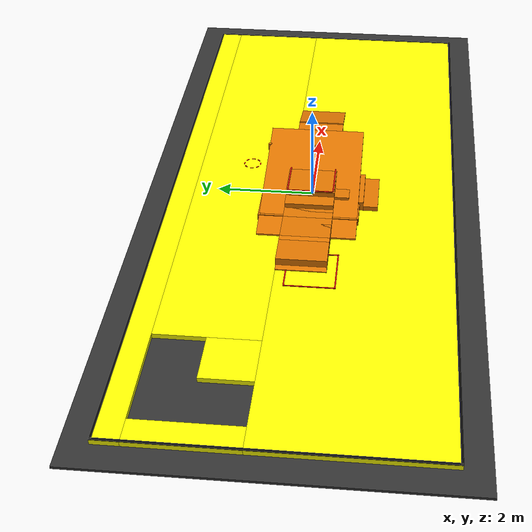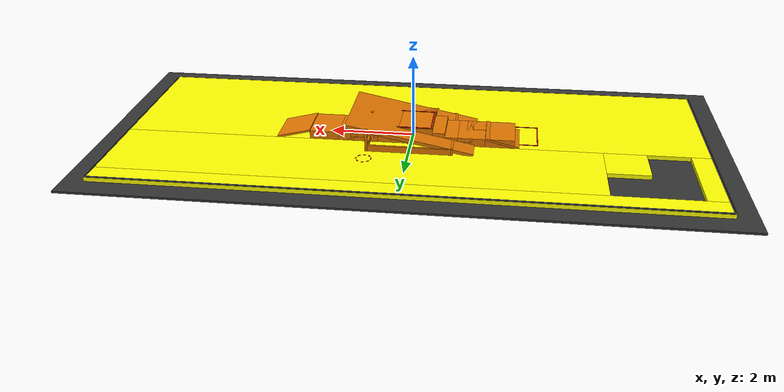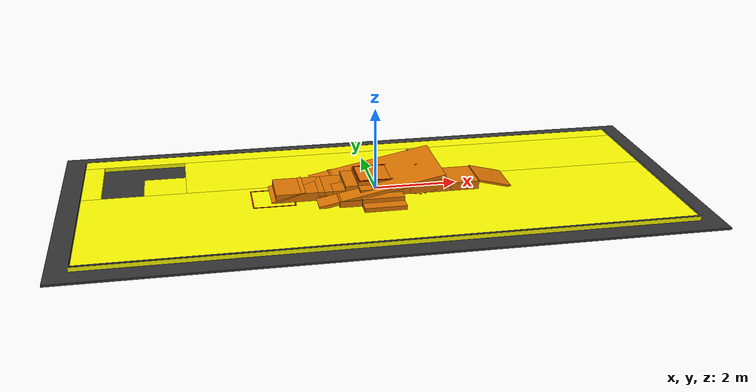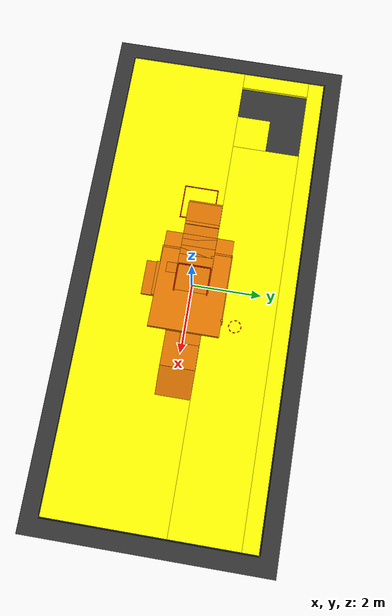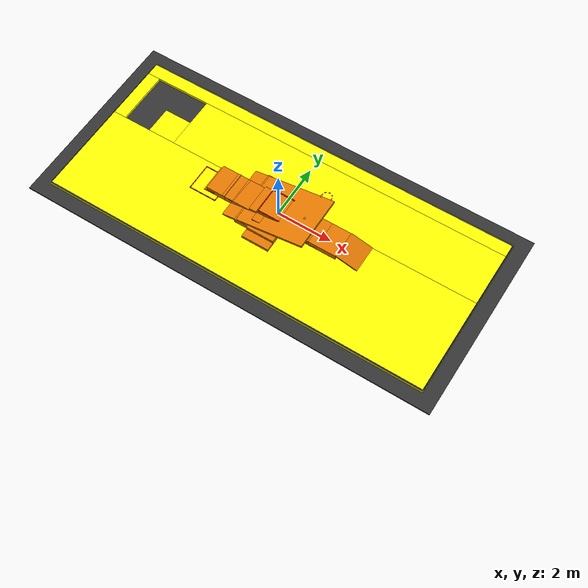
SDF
<?xml version="1.0"?>
<sdf version="1.10">
  <world name="robocon_obstacle_field">
    <physics name="robocon_physics" type="ignored">
      <!-- 该世界只做上层算法联调，测试狗没有腿部接触动力学。100 Hz 足以支撑仿真 IMU；
           更高的 /clock 会让十多个 use_sim_time 节点频繁唤醒，在 Gazebo GUI、RViz、
           OpenCV 和点云同机运行时反而挤压 /scan、/odom 与地图更新。 -->
      <max_step_size>0.01</max_step_size>
      <real_time_factor>1.0</real_time_factor>
    </physics>
    <gravity>0 0 -9.80665</gravity>

    <plugin filename="gz-sim-physics-system" name="gz::sim::systems::Physics"/>
    <plugin filename="gz-sim-user-commands-system" name="gz::sim::systems::UserCommands"/>
    <plugin filename="gz-sim-scene-broadcaster-system" name="gz::sim::systems::SceneBroadcaster"/>
    <plugin filename="gz-sim-imu-system" name="gz::sim::systems::Imu"/>
    <plugin filename="gz-sim-sensors-system" name="gz::sim::systems::Sensors">
      <render_engine>ogre2</render_engine>
    </plugin>

    <scene>
      <ambient>0.55 0.55 0.55 1</ambient>
      <background>0.82 0.86 0.92 1</background>
      <shadows>true</shadows>
      <grid>false</grid>
    </scene>
    <light name="sun" type="directional">
      <cast_shadows>true</cast_shadows>
      <pose>0 0 10 0 0 0</pose>
      <diffuse>0.95 0.95 0.95 1</diffuse>
      <specular>0.20 0.20 0.20 1</specular>
      <direction>-0.35 0.25 -0.90</direction>
    </light>

    <!--
      ======================== REFERENCE LAYOUT ========================
      唯一的障碍全局坐标表：x y z roll pitch yaw（m / rad）。当前值只依据规则图 1
      排成便于调试的参考布局，不是官方最终坐标。正式坐标到手后只改下列八行。
    -->
    <frame name="layout_right_angle_poles"><pose>-5.20 -1.55 0 0 0 0</pose></frame>
    <frame name="layout_gravel_wood_pit"><pose>-5.50 1.50 0 0 0 0</pose></frame>
    <!-- 正式坐标尚未发布。当前参考位姿在保持图示分区关系的同时，为 0.75 m 测试
         机身和长桥出口保留净空；此前两座桥贴近 +X 边界，完整按规则长度通过后模型
         必然越界，无法形成可信的 8 障碍全场回归。后续仍只改本布局区。 -->
    <!-- 独立于官方坐标，仅用于仿真回归可复现。比赛场地坐标可在后续版本中替换。 -->
    <frame name="layout_height_bar"><pose>-3.30 -1.90 0 0 0 0</pose></frame>
    <frame name="layout_main_slope"><pose>-1.20 1.70 0 0 0 0</pose></frame>
    <frame name="layout_wooden_bridge_a"><pose>3.60 1.85 0 0 0 0</pose></frame>
    <!-- B 桥从 y=0.00 北移 0.35 m：旧布局与 T 台之间的物理净宽只有约 0.55 m，
         小于测试狗 0.60 m 直径，Nav2 无论参数如何都不可能从高墙出口绕到桥的纵向入口。
         新参考布局给南侧约 0.90 m 净宽，且东端仍可绕到木桥 A；障碍自身尺寸、颜色和
         算法接口均未改变。此处仍是待正式坐标替换的唯一布局参数。 -->
    <frame name="layout_wooden_bridge_b"><pose>2.15 0.35 0 0 0 0</pose></frame>
    <!-- T 台原参考 y=-1.00 时，其北侧出口与木桥 B 的南边界几乎相接；测试狗越过
         T 台会直接落进下一障碍碰撞区，无法验证“逐障碍继续探索”。向南平移 0.55 m
         后仍完全位于 14×6 m 赛台内，结构尺寸/颜色不变。正式坐标公布后仍只改本行。 -->
    <frame name="layout_t_shaped_stairs"><pose>2.35 -1.55 0 0 0 0</pose></frame>
    <frame name="layout_high_wall"><pose>-0.55 -1.35 0 0 0 0</pose></frame>
    <!-- ====================== END REFERENCE LAYOUT ====================== -->

    <!-- 场地地面被拆成五块，以便在左上角真的留出 100 mm 深 L 形凹坑。 -->
    <model name="competition_floor">
      <static>true</static>
      <link name="underlay">
        <pose>0 0 -0.125 0 0 0</pose>
        <collision name="collision"><geometry><box><size>15 7 0.05</size></box></geometry></collision>
        <visual name="visual"><geometry><box><size>15 7 0.05</size></box></geometry><material><diffuse>0.20 0.20 0.20 1</diffuse></material></visual>
      </link>
      <!-- 黄色表面顶面严格位于 z=0。坑外分块间没有空隙。 -->
      <link name="floor_south"><pose>0 -1.25 -0.05 0 0 0</pose><collision name="c"><geometry><box><size>14 3.5 0.1</size></box></geometry></collision><visual name="v"><geometry><box><size>14 3.5 0.1</size></box></geometry><material><ambient>1 1 0 1</ambient><diffuse>1 1 0 1</diffuse></material></visual></link>
      <link name="floor_north"><pose>0 2.75 -0.05 0 0 0</pose><collision name="c"><geometry><box><size>14 0.5 0.1</size></box></geometry></collision><visual name="v"><geometry><box><size>14 0.5 0.1</size></box></geometry><material><ambient>1 1 0 1</ambient><diffuse>1 1 0 1</diffuse></material></visual></link>
      <link name="floor_pit_west"><pose>-6.75 1.5 -0.05 0 0 0</pose><collision name="c"><geometry><box><size>0.5 2 0.1</size></box></geometry></collision><visual name="v"><geometry><box><size>0.5 2 0.1</size></box></geometry><material><ambient>1 1 0 1</ambient><diffuse>1 1 0 1</diffuse></material></visual></link>
      <link name="floor_pit_east"><pose>1.25 1.5 -0.05 0 0 0</pose><collision name="c"><geometry><box><size>11.5 2 0.1</size></box></geometry></collision><visual name="v"><geometry><box><size>11.5 2 0.1</size></box></geometry><material><ambient>1 1 0 1</ambient><diffuse>1 1 0 1</diffuse></material></visual></link>
      <link name="floor_pit_inner"><pose>-5.0 1.0 -0.05 0 0 0</pose><collision name="c"><geometry><box><size>1 1 0.1</size></box></geometry></collision><visual name="v"><geometry><box><size>1 1 0.1</size></box></geometry><material><ambient>1 1 0 1</ambient><diffuse>1 1 0 1</diffuse></material></visual></link>

      <!-- 黑色外框只作视觉边界；高 20 mm，不冒充规则未规定的围墙。 -->
      <link name="border_n"><pose>0 2.98 0.01 0 0 0</pose><collision name="c"><geometry><box><size>14 0.04 0.02</size></box></geometry></collision><visual name="v"><geometry><box><size>14 0.04 0.02</size></box></geometry><material><diffuse>0.02 0.02 0.02 1</diffuse></material></visual></link>
      <link name="border_s"><pose>0 -2.98 0.01 0 0 0</pose><collision name="c"><geometry><box><size>14 0.04 0.02</size></box></geometry></collision><visual name="v"><geometry><box><size>14 0.04 0.02</size></box></geometry><material><diffuse>0.02 0.02 0.02 1</diffuse></material></visual></link>
      <link name="border_e"><pose>6.98 0 0.01 0 0 0</pose><collision name="c"><geometry><box><size>0.04 6 0.02</size></box></geometry></collision><visual name="v"><geometry><box><size>0.04 6 0.02</size></box></geometry><material><diffuse>0.02 0.02 0.02 1</diffuse></material></visual></link>
      <link name="border_w"><pose>-6.98 0 0.01 0 0 0</pose><collision name="c"><geometry><box><size>0.04 6 0.02</size></box></geometry></collision><visual name="v"><geometry><box><size>0.04 6 0.02</size></box></geometry><material><diffuse>0.02 0.02 0.02 1</diffuse></material></visual></link>
    </model>

    <!-- LAYOUT 1/8：直角绕杆。三杆高 0.55 m（规则要求不低于 0.50 m），相邻杆 1.00 m。 -->
    <model name="right_angle_poles">
      <static>true</static>
      <pose relative_to="layout_right_angle_poles">0 0 0 0 0 0</pose>
      <link name="poles_and_zones">
        <collision name="pole_1"><pose>0 0 0.275 0 0 0</pose><geometry><cylinder><radius>0.035</radius><length>0.55</length></cylinder></geometry></collision>
        <collision name="pole_2"><pose>1 0 0.275 0 0 0</pose><geometry><cylinder><radius>0.035</radius><length>0.55</length></cylinder></geometry></collision>
        <collision name="pole_3"><pose>1 1 0.275 0 0 0</pose><geometry><cylinder><radius>0.035</radius><length>0.55</length></cylinder></geometry></collision>
        <visual name="visual_pole_1"><pose>0 0 0.275 0 0 0</pose><geometry><cylinder><radius>0.035</radius><length>0.55</length></cylinder></geometry><material><ambient>0.874510 0.458824 0 1</ambient><diffuse>0.874510 0.458824 0 1</diffuse></material></visual>
        <visual name="visual_pole_2"><pose>1 0 0.275 0 0 0</pose><geometry><cylinder><radius>0.035</radius><length>0.55</length></cylinder></geometry><material><ambient>0.874510 0.458824 0 1</ambient><diffuse>0.874510 0.458824 0 1</diffuse></material></visual>
        <visual name="visual_pole_3"><pose>1 1 0.275 0 0 0</pose><geometry><cylinder><radius>0.035</radius><length>0.55</length></cylinder></geometry><material><ambient>0.874510 0.458824 0 1</ambient><diffuse>0.874510 0.458824 0 1</diffuse></material></visual>
        <!-- V2.0：三个直径约 350 mm 的必达区是红色虚线圆，中心与相应标志杆相距
             400 mm。下方每圆由八段红色切线短线组成，全部只有 visual、没有 collision；
             圆内不铺红色几何，因而仍显示场地黄色。 -->
        <visual name="zone_start_dash_01"><pose>-0.225000 0.000000 0.003 0 0 1.570796</pose><geometry><box><size>0.070 0.020 0.006</size></box></geometry><material><ambient>1 0 0 1</ambient><diffuse>1 0 0 1</diffuse></material></visual>
        <visual name="zone_start_dash_02"><pose>-0.276256 0.123744 0.003 0 0 2.356194</pose><geometry><box><size>0.070 0.020 0.006</size></box></geometry><material><ambient>1 0 0 1</ambient><diffuse>1 0 0 1</diffuse></material></visual>
        <visual name="zone_start_dash_03"><pose>-0.400000 0.175000 0.003 0 0 3.141593</pose><geometry><box><size>0.070 0.020 0.006</size></box></geometry><material><ambient>1 0 0 1</ambient><diffuse>1 0 0 1</diffuse></material></visual>
        <visual name="zone_start_dash_04"><pose>-0.523744 0.123744 0.003 0 0 3.926991</pose><geometry><box><size>0.070 0.020 0.006</size></box></geometry><material><ambient>1 0 0 1</ambient><diffuse>1 0 0 1</diffuse></material></visual>
        <visual name="zone_start_dash_05"><pose>-0.575000 0.000000 0.003 0 0 4.712389</pose><geometry><box><size>0.070 0.020 0.006</size></box></geometry><material><ambient>1 0 0 1</ambient><diffuse>1 0 0 1</diffuse></material></visual>
        <visual name="zone_start_dash_06"><pose>-0.523744 -0.123744 0.003 0 0 5.497787</pose><geometry><box><size>0.070 0.020 0.006</size></box></geometry><material><ambient>1 0 0 1</ambient><diffuse>1 0 0 1</diffuse></material></visual>
        <visual name="zone_start_dash_07"><pose>-0.400000 -0.175000 0.003 0 0 6.283185</pose><geometry><box><size>0.070 0.020 0.006</size></box></geometry><material><ambient>1 0 0 1</ambient><diffuse>1 0 0 1</diffuse></material></visual>
        <visual name="zone_start_dash_08"><pose>-0.276256 -0.123744 0.003 0 0 7.068583</pose><geometry><box><size>0.070 0.020 0.006</size></box></geometry><material><ambient>1 0 0 1</ambient><diffuse>1 0 0 1</diffuse></material></visual>
        <visual name="zone_corner_dash_01"><pose>1.175000 -0.400000 0.003 0 0 1.570796</pose><geometry><box><size>0.070 0.020 0.006</size></box></geometry><material><ambient>1 0 0 1</ambient><diffuse>1 0 0 1</diffuse></material></visual>
        <visual name="zone_corner_dash_02"><pose>1.123744 -0.276256 0.003 0 0 2.356194</pose><geometry><box><size>0.070 0.020 0.006</size></box></geometry><material><ambient>1 0 0 1</ambient><diffuse>1 0 0 1</diffuse></material></visual>
        <visual name="zone_corner_dash_03"><pose>1.000000 -0.225000 0.003 0 0 3.141593</pose><geometry><box><size>0.070 0.020 0.006</size></box></geometry><material><ambient>1 0 0 1</ambient><diffuse>1 0 0 1</diffuse></material></visual>
        <visual name="zone_corner_dash_04"><pose>0.876256 -0.276256 0.003 0 0 3.926991</pose><geometry><box><size>0.070 0.020 0.006</size></box></geometry><material><ambient>1 0 0 1</ambient><diffuse>1 0 0 1</diffuse></material></visual>
        <visual name="zone_corner_dash_05"><pose>0.825000 -0.400000 0.003 0 0 4.712389</pose><geometry><box><size>0.070 0.020 0.006</size></box></geometry><material><ambient>1 0 0 1</ambient><diffuse>1 0 0 1</diffuse></material></visual>
        <visual name="zone_corner_dash_06"><pose>0.876256 -0.523744 0.003 0 0 5.497787</pose><geometry><box><size>0.070 0.020 0.006</size></box></geometry><material><ambient>1 0 0 1</ambient><diffuse>1 0 0 1</diffuse></material></visual>
        <visual name="zone_corner_dash_07"><pose>1.000000 -0.575000 0.003 0 0 6.283185</pose><geometry><box><size>0.070 0.020 0.006</size></box></geometry><material><ambient>1 0 0 1</ambient><diffuse>1 0 0 1</diffuse></material></visual>
        <visual name="zone_corner_dash_08"><pose>1.123744 -0.523744 0.003 0 0 7.068583</pose><geometry><box><size>0.070 0.020 0.006</size></box></geometry><material><ambient>1 0 0 1</ambient><diffuse>1 0 0 1</diffuse></material></visual>
        <visual name="zone_finish_dash_01"><pose>1.175000 1.400000 0.003 0 0 1.570796</pose><geometry><box><size>0.070 0.020 0.006</size></box></geometry><material><ambient>1 0 0 1</ambient><diffuse>1 0 0 1</diffuse></material></visual>
        <visual name="zone_finish_dash_02"><pose>1.123744 1.523744 0.003 0 0 2.356194</pose><geometry><box><size>0.070 0.020 0.006</size></box></geometry><material><ambient>1 0 0 1</ambient><diffuse>1 0 0 1</diffuse></material></visual>
        <visual name="zone_finish_dash_03"><pose>1.000000 1.575000 0.003 0 0 3.141593</pose><geometry><box><size>0.070 0.020 0.006</size></box></geometry><material><ambient>1 0 0 1</ambient><diffuse>1 0 0 1</diffuse></material></visual>
        <visual name="zone_finish_dash_04"><pose>0.876256 1.523744 0.003 0 0 3.926991</pose><geometry><box><size>0.070 0.020 0.006</size></box></geometry><material><ambient>1 0 0 1</ambient><diffuse>1 0 0 1</diffuse></material></visual>
        <visual name="zone_finish_dash_05"><pose>0.825000 1.400000 0.003 0 0 4.712389</pose><geometry><box><size>0.070 0.020 0.006</size></box></geometry><material><ambient>1 0 0 1</ambient><diffuse>1 0 0 1</diffuse></material></visual>
        <visual name="zone_finish_dash_06"><pose>0.876256 1.276256 0.003 0 0 5.497787</pose><geometry><box><size>0.070 0.020 0.006</size></box></geometry><material><ambient>1 0 0 1</ambient><diffuse>1 0 0 1</diffuse></material></visual>
        <visual name="zone_finish_dash_07"><pose>1.000000 1.225000 0.003 0 0 6.283185</pose><geometry><box><size>0.070 0.020 0.006</size></box></geometry><material><ambient>1 0 0 1</ambient><diffuse>1 0 0 1</diffuse></material></visual>
        <visual name="zone_finish_dash_08"><pose>1.123744 1.276256 0.003 0 0 7.068583</pose><geometry><box><size>0.070 0.020 0.006</size></box></geometry><material><ambient>1 0 0 1</ambient><diffuse>1 0 0 1</diffuse></material></visual>
      </link>
    </model>

    <!-- LAYOUT 2/8：L 形砂砾碎木坑。外包络 2×2 m、两臂宽 1 m、深约 0.10 m、护栏 0.15 m。 -->
    <model name="gravel_wood_pit">
      <static>true</static>
      <pose relative_to="layout_gravel_wood_pit">0 0 0 0 0 0</pose>
      <link name="pit_surfaces">
        <!-- 左臂砂砾与上臂碎木表面在 z=-0.10 m。 -->
        <collision name="gravel_bed"><pose>-0.5 0 -0.105 0 0 0</pose><geometry><box><size>0.95 1.95 0.01</size></box></geometry></collision>
        <visual name="visual_gravel_bed"><pose>-0.5 0 -0.105 0 0 0</pose><geometry><box><size>0.95 1.95 0.01</size></box></geometry><material><ambient>0.28 0.29 0.27 1</ambient><diffuse>0.38 0.39 0.36 1</diffuse></material></visual>
        <collision name="wood_bed"><pose>0.5 0.5 -0.105 0 0 0</pose><geometry><box><size>0.95 0.95 0.01</size></box></geometry></collision>
        <visual name="visual_wood_bed"><pose>0.5 0.5 -0.105 0 0 0</pose><geometry><box><size>0.95 0.95 0.01</size></box></geometry><material><ambient>0.34 0.16 0.05 1</ambient><diffuse>0.48 0.24 0.08 1</diffuse></material></visual>
        <!-- 橘黄色护栏沿 L 形外边界及内拐角，高度 150 mm。 -->
        <collision name="rail_w"><pose>-1 0 0.075 0 0 0</pose><geometry><box><size>0.05 2.05 0.15</size></box></geometry></collision>
        <collision name="rail_n"><pose>0 1 0.075 0 0 0</pose><geometry><box><size>2.05 0.05 0.15</size></box></geometry></collision>
        <collision name="rail_e"><pose>1 0.5 0.075 0 0 0</pose><geometry><box><size>0.05 1.05 0.15</size></box></geometry></collision>
        <collision name="rail_s_left"><pose>-0.5 -1 0.075 0 0 0</pose><geometry><box><size>1.05 0.05 0.15</size></box></geometry></collision>
        <collision name="rail_inner_v"><pose>0 -0.5 0.075 0 0 0</pose><geometry><box><size>0.05 1.05 0.15</size></box></geometry></collision>
        <collision name="rail_inner_h"><pose>0.5 0 0.075 0 0 0</pose><geometry><box><size>1.05 0.05 0.15</size></box></geometry></collision>
        <visual name="visual_rail_w"><pose>-1 0 0.075 0 0 0</pose><geometry><box><size>0.05 2.05 0.15</size></box></geometry><material><diffuse>0.874510 0.458824 0 1</diffuse></material></visual>
        <visual name="visual_rail_n"><pose>0 1 0.075 0 0 0</pose><geometry><box><size>2.05 0.05 0.15</size></box></geometry><material><diffuse>0.874510 0.458824 0 1</diffuse></material></visual>
        <visual name="visual_rail_e"><pose>1 0.5 0.075 0 0 0</pose><geometry><box><size>0.05 1.05 0.15</size></box></geometry><material><diffuse>0.874510 0.458824 0 1</diffuse></material></visual>
        <visual name="visual_rail_s_left"><pose>-0.5 -1 0.075 0 0 0</pose><geometry><box><size>1.05 0.05 0.15</size></box></geometry><material><diffuse>0.874510 0.458824 0 1</diffuse></material></visual>
        <visual name="visual_rail_inner_v"><pose>0 -0.5 0.075 0 0 0</pose><geometry><box><size>0.05 1.05 0.15</size></box></geometry><material><diffuse>0.874510 0.458824 0 1</diffuse></material></visual>
        <visual name="visual_rail_inner_h"><pose>0.5 0 0.075 0 0 0</pose><geometry><box><size>1.05 0.05 0.15</size></box></geometry><material><diffuse>0.874510 0.458824 0 1</diffuse></material></visual>
        <!-- 规则中的随机砂砾/边角料以确定性样件近似，保证 CI 和 rosbag 可复现。 -->
        <visual name="stone_1"><pose>-0.72 -0.65 -0.075 0.2 0.1 0.4</pose><geometry><sphere><radius>0.075</radius></sphere></geometry><material><diffuse>0.45 0.46 0.43 1</diffuse></material></visual>
        <visual name="stone_2"><pose>-0.35 -0.35 -0.070 -0.1 0.3 0</pose><geometry><sphere><radius>0.080</radius></sphere></geometry><material><diffuse>0.32 0.33 0.31 1</diffuse></material></visual>
        <visual name="stone_3"><pose>-0.70 0.10 -0.072 0.1 -0.2 0</pose><geometry><sphere><radius>0.070</radius></sphere></geometry><material><diffuse>0.55 0.53 0.47 1</diffuse></material></visual>
        <visual name="stone_4"><pose>-0.32 0.55 -0.068 0.3 0.1 0</pose><geometry><sphere><radius>0.085</radius></sphere></geometry><material><diffuse>0.37 0.38 0.35 1</diffuse></material></visual>
        <visual name="wood_1"><pose>0.25 0.25 -0.075 0.1 0.15 0.3</pose><geometry><box><size>0.35 0.10 0.07</size></box></geometry><material><diffuse>0.50 0.25 0.07 1</diffuse></material></visual>
        <visual name="wood_2"><pose>0.68 0.35 -0.070 -0.2 0.1 -0.4</pose><geometry><box><size>0.30 0.12 0.08</size></box></geometry><material><diffuse>0.38 0.17 0.05 1</diffuse></material></visual>
        <visual name="wood_3"><pose>0.38 0.72 -0.068 0.1 -0.2 0.8</pose><geometry><box><size>0.42 0.09 0.08</size></box></geometry><material><diffuse>0.58 0.31 0.10 1</diffuse></material></visual>
        <visual name="wood_4"><pose>0.75 0.72 -0.072 -0.1 0.2 0.2</pose><geometry><box><size>0.25 0.12 0.07</size></box></geometry><material><diffuse>0.44 0.21 0.06 1</diffuse></material></visual>
        <!--
          样件同时具有 collision，深度点云与车轮才能真实感知表面起伏。规则规定填料随机，
          因而这里只锁定 L 形、深度和护栏尺寸，采用确定性样本保证 rosbag/CI 可复现。
        -->
        <collision name="stone_collision_1"><pose>-0.72 -0.65 -0.075 0.2 0.1 0.4</pose><geometry><sphere><radius>0.075</radius></sphere></geometry></collision>
        <collision name="stone_collision_2"><pose>-0.35 -0.35 -0.070 -0.1 0.3 0</pose><geometry><sphere><radius>0.080</radius></sphere></geometry></collision>
        <collision name="stone_collision_3"><pose>-0.70 0.10 -0.072 0.1 -0.2 0</pose><geometry><sphere><radius>0.070</radius></sphere></geometry></collision>
        <collision name="stone_collision_4"><pose>-0.32 0.55 -0.068 0.3 0.1 0</pose><geometry><sphere><radius>0.085</radius></sphere></geometry></collision>
        <collision name="wood_collision_1"><pose>0.25 0.25 -0.075 0.1 0.15 0.3</pose><geometry><box><size>0.35 0.10 0.07</size></box></geometry></collision>
        <collision name="wood_collision_2"><pose>0.68 0.35 -0.070 -0.2 0.1 -0.4</pose><geometry><box><size>0.30 0.12 0.08</size></box></geometry></collision>
        <collision name="wood_collision_3"><pose>0.38 0.72 -0.068 0.1 -0.2 0.8</pose><geometry><box><size>0.42 0.09 0.08</size></box></geometry></collision>
        <collision name="wood_collision_4"><pose>0.75 0.72 -0.072 -0.1 0.2 0.2</pose><geometry><box><size>0.25 0.12 0.07</size></box></geometry></collision>
      </link>
    </model>

    <!-- LAYOUT 3/8：限高杆。横杆长 1.00 m，直径 40 mm，底部离地严格 0.30 m。 -->
    <model name="height_bar">
      <static>true</static>
      <pose relative_to="layout_height_bar">0 0 0 0 0 0</pose>
      <link name="bar">
        <!-- 规则图明确画出两只圆形落地底座，但未公布直径；采用 180 mm 参考直径。
             底座属于 world 外观/碰撞细节，正式尺寸公布后只需在这里改，不影响算法。 -->
        <collision name="left_base"><pose>0 -0.5 0.01 0 0 0</pose><geometry><cylinder><radius>0.09</radius><length>0.02</length></cylinder></geometry></collision>
        <collision name="right_base"><pose>0 0.5 0.01 0 0 0</pose><geometry><cylinder><radius>0.09</radius><length>0.02</length></cylinder></geometry></collision>
        <collision name="left_post"><pose>0 -0.5 0.16 0 0 0</pose><geometry><cylinder><radius>0.025</radius><length>0.32</length></cylinder></geometry></collision>
        <collision name="right_post"><pose>0 0.5 0.16 0 0 0</pose><geometry><cylinder><radius>0.025</radius><length>0.32</length></cylinder></geometry></collision>
        <collision name="crossbar"><pose>0 0 0.32 1.570796 0 0</pose><geometry><cylinder><radius>0.02</radius><length>1.0</length></cylinder></geometry></collision>
        <visual name="visual_left_post"><pose>0 -0.5 0.16 0 0 0</pose><geometry><cylinder><radius>0.025</radius><length>0.32</length></cylinder></geometry><material><diffuse>0.874510 0.458824 0 1</diffuse></material></visual>
        <visual name="visual_right_post"><pose>0 0.5 0.16 0 0 0</pose><geometry><cylinder><radius>0.025</radius><length>0.32</length></cylinder></geometry><material><diffuse>0.874510 0.458824 0 1</diffuse></material></visual>
        <visual name="visual_left_base"><pose>0 -0.5 0.011 0 0 0</pose><geometry><cylinder><radius>0.09</radius><length>0.022</length></cylinder></geometry><material><diffuse>0.874510 0.458824 0 1</diffuse></material></visual>
        <visual name="visual_right_base"><pose>0 0.5 0.011 0 0 0</pose><geometry><cylinder><radius>0.09</radius><length>0.022</length></cylinder></geometry><material><diffuse>0.874510 0.458824 0 1</diffuse></material></visual>
        <!-- 十段 100 mm 圆柱首尾相接，蓝白相间；整体碰撞仍由上面的 1 m 圆柱负责。 -->
        <visual name="bar_01"><pose>0 -0.45 0.32 1.570796 0 0</pose><geometry><cylinder><radius>0.021</radius><length>0.10</length></cylinder></geometry><material><diffuse>0.121569 0.254902 0.623529 1</diffuse></material></visual>
        <visual name="bar_02"><pose>0 -0.35 0.32 1.570796 0 0</pose><geometry><cylinder><radius>0.021</radius><length>0.10</length></cylinder></geometry><material><diffuse>1 1 1 1</diffuse></material></visual>
        <visual name="bar_03"><pose>0 -0.25 0.32 1.570796 0 0</pose><geometry><cylinder><radius>0.021</radius><length>0.10</length></cylinder></geometry><material><diffuse>0.121569 0.254902 0.623529 1</diffuse></material></visual>
        <visual name="bar_04"><pose>0 -0.15 0.32 1.570796 0 0</pose><geometry><cylinder><radius>0.021</radius><length>0.10</length></cylinder></geometry><material><diffuse>1 1 1 1</diffuse></material></visual>
        <visual name="bar_05"><pose>0 -0.05 0.32 1.570796 0 0</pose><geometry><cylinder><radius>0.021</radius><length>0.10</length></cylinder></geometry><material><diffuse>0.121569 0.254902 0.623529 1</diffuse></material></visual>
        <visual name="bar_06"><pose>0 0.05 0.32 1.570796 0 0</pose><geometry><cylinder><radius>0.021</radius><length>0.10</length></cylinder></geometry><material><diffuse>1 1 1 1</diffuse></material></visual>
        <visual name="bar_07"><pose>0 0.15 0.32 1.570796 0 0</pose><geometry><cylinder><radius>0.021</radius><length>0.10</length></cylinder></geometry><material><diffuse>0.121569 0.254902 0.623529 1</diffuse></material></visual>
        <visual name="bar_08"><pose>0 0.25 0.32 1.570796 0 0</pose><geometry><cylinder><radius>0.021</radius><length>0.10</length></cylinder></geometry><material><diffuse>1 1 1 1</diffuse></material></visual>
        <visual name="bar_09"><pose>0 0.35 0.32 1.570796 0 0</pose><geometry><cylinder><radius>0.021</radius><length>0.10</length></cylinder></geometry><material><diffuse>0.121569 0.254902 0.623529 1</diffuse></material></visual>
        <visual name="bar_10"><pose>0 0.45 0.32 1.570796 0 0</pose><geometry><cylinder><radius>0.021</radius><length>0.10</length></cylinder></geometry><material><diffuse>1 1 1 1</diffuse></material></visual>
      </link>
    </model>

    <!-- LAYOUT 4/8：大斜坡。V2.0 为水平长 3.00 m、总宽 2.00 m、坡角 11.3°。 -->
    <model name="main_slope">
      <static>true</static>
      <pose relative_to="layout_main_slope">0 0 0 0 0 0</pose>
      <link name="slope">
        <!-- 水平投影 3.000 m，高差 3*tan(11.3°)=0.599459 m，斜面长 3/cos(11.3°)=3.059306 m。
             中心 z 取高差的一半；薄板与地面的微小交叠用于避免仿真接触缝隙。 -->
        <collision name="ramp"><pose>0 0 0.299730 0 -0.197222 0</pose><geometry><box><size>3.059306 2.00 0.08</size></box></geometry></collision>
        <visual name="visual_ramp"><pose>0 0 0.299730 0 -0.197222 0</pose><geometry><box><size>3.059306 2.00 0.08</size></box></geometry><material><ambient>0.874510 0.458824 0 1</ambient><diffuse>0.874510 0.458824 0 1</diffuse></material></visual>
      </link>
    </model>

    <!-- LAYOUT 5/8：木桥 A。规则图：跨段 1.50 m，三条并行桥条各宽 0.10 m；平台高 0.20 m。 -->
    <model name="wooden_bridge_a">
      <static>true</static>
      <pose relative_to="layout_wooden_bridge_a">0 0 0 0 0 0</pose>
      <link name="bridge_a">
        <collision name="start_platform"><pose>-1.25 0 0.10 0 0 0</pose><geometry><box><size>1.00 1.00 0.20</size></box></geometry></collision>
        <collision name="finish_platform"><pose>1.25 0 0.10 0 0 0</pose><geometry><box><size>1.00 1.00 0.20</size></box></geometry></collision>
        <collision name="beam_1"><pose>0 -0.20 0.15 0 0 0</pose><geometry><box><size>1.50 0.10 0.10</size></box></geometry></collision>
        <collision name="beam_2"><pose>0 0 0.15 0 0 0</pose><geometry><box><size>1.50 0.10 0.10</size></box></geometry></collision>
        <collision name="beam_3"><pose>0 0.20 0.15 0 0 0</pose><geometry><box><size>1.50 0.10 0.10</size></box></geometry></collision>
        <!-- 两座木桥共两条上下平台小坡：A 使用入口坡，14°、平台高 0.20 m。 -->
        <collision name="approach_ramp"><pose>-2.151 0 0.10 0 -0.244346 0</pose><geometry><box><size>0.827 1.00 0.05</size></box></geometry></collision>
        <visual name="visual_start_platform"><pose>-1.25 0 0.10 0 0 0</pose><geometry><box><size>1.00 1.00 0.20</size></box></geometry><material><diffuse>0.874510 0.458824 0 1</diffuse></material></visual>
        <visual name="visual_finish_platform"><pose>1.25 0 0.10 0 0 0</pose><geometry><box><size>1.00 1.00 0.20</size></box></geometry><material><diffuse>0.874510 0.458824 0 1</diffuse></material></visual>
        <visual name="visual_beam_1"><pose>0 -0.20 0.15 0 0 0</pose><geometry><box><size>1.50 0.10 0.10</size></box></geometry><material><diffuse>0.874510 0.458824 0 1</diffuse></material></visual>
        <visual name="visual_beam_2"><pose>0 0 0.15 0 0 0</pose><geometry><box><size>1.50 0.10 0.10</size></box></geometry><material><diffuse>0.874510 0.458824 0 1</diffuse></material></visual>
        <visual name="visual_beam_3"><pose>0 0.20 0.15 0 0 0</pose><geometry><box><size>1.50 0.10 0.10</size></box></geometry><material><diffuse>0.874510 0.458824 0 1</diffuse></material></visual>
        <visual name="visual_approach_ramp"><pose>-2.151 0 0.10 0 -0.244346 0</pose><geometry><box><size>0.827 1.00 0.05</size></box></geometry><material><diffuse>0.874510 0.458824 0 1</diffuse></material></visual>
      </link>
    </model>

    <!-- LAYOUT 6/8：木桥 B。规则图：跨段 2.90 m，六块 0.15 m 桥板，净间隔 0.40 m。 -->
    <model name="wooden_bridge_b">
      <static>true</static>
      <pose relative_to="layout_wooden_bridge_b">0 0 0 0 0 0</pose>
      <link name="bridge_b">
        <collision name="start"><pose>-1.95 0 0.10 0 0 0</pose><geometry><box><size>1.00 1.00 0.20</size></box></geometry></collision>
        <collision name="finish"><pose>1.95 0 0.10 0 0 0</pose><geometry><box><size>1.00 1.00 0.20</size></box></geometry></collision>
        <visual name="visual_start"><pose>-1.95 0 0.10 0 0 0</pose><geometry><box><size>1.00 1.00 0.20</size></box></geometry><material><diffuse>0.874510 0.458824 0 1</diffuse></material></visual>
        <visual name="visual_finish"><pose>1.95 0 0.10 0 0 0</pose><geometry><box><size>1.00 1.00 0.20</size></box></geometry><material><diffuse>0.874510 0.458824 0 1</diffuse></material></visual>
        <collision name="plank_1"><pose>-1.375 0 0.15 0 0 0</pose><geometry><box><size>0.15 1.00 0.10</size></box></geometry></collision>
        <collision name="plank_2"><pose>-0.825 0 0.15 0 0 0</pose><geometry><box><size>0.15 1.00 0.10</size></box></geometry></collision>
        <collision name="plank_3"><pose>-0.275 0 0.15 0 0 0</pose><geometry><box><size>0.15 1.00 0.10</size></box></geometry></collision>
        <collision name="plank_4"><pose>0.275 0 0.15 0 0 0</pose><geometry><box><size>0.15 1.00 0.10</size></box></geometry></collision>
        <collision name="plank_5"><pose>0.825 0 0.15 0 0 0</pose><geometry><box><size>0.15 1.00 0.10</size></box></geometry></collision>
        <collision name="plank_6"><pose>1.375 0 0.15 0 0 0</pose><geometry><box><size>0.15 1.00 0.10</size></box></geometry></collision>
        <!-- B 使用出口坡；水平投影约 0.802 m，斜面长度约 0.827 m，倾角严格为 14°。 -->
        <collision name="approach_ramp"><pose>2.851 0 0.10 0 0.244346 0</pose><geometry><box><size>0.827 1.00 0.05</size></box></geometry></collision>
        <visual name="visual_plank_1"><pose>-1.375 0 0.15 0 0 0</pose><geometry><box><size>0.15 1.00 0.10</size></box></geometry><material><diffuse>0.874510 0.458824 0 1</diffuse></material></visual>
        <visual name="visual_plank_2"><pose>-0.825 0 0.15 0 0 0</pose><geometry><box><size>0.15 1.00 0.10</size></box></geometry><material><diffuse>0.874510 0.458824 0 1</diffuse></material></visual>
        <visual name="visual_plank_3"><pose>-0.275 0 0.15 0 0 0</pose><geometry><box><size>0.15 1.00 0.10</size></box></geometry><material><diffuse>0.874510 0.458824 0 1</diffuse></material></visual>
        <visual name="visual_plank_4"><pose>0.275 0 0.15 0 0 0</pose><geometry><box><size>0.15 1.00 0.10</size></box></geometry><material><diffuse>0.874510 0.458824 0 1</diffuse></material></visual>
        <visual name="visual_plank_5"><pose>0.825 0 0.15 0 0 0</pose><geometry><box><size>0.15 1.00 0.10</size></box></geometry><material><diffuse>0.874510 0.458824 0 1</diffuse></material></visual>
        <visual name="visual_plank_6"><pose>1.375 0 0.15 0 0 0</pose><geometry><box><size>0.15 1.00 0.10</size></box></geometry><material><diffuse>0.874510 0.458824 0 1</diffuse></material></visual>
        <visual name="visual_approach_ramp"><pose>2.851 0 0.10 0 0.244346 0</pose><geometry><box><size>0.827 1.00 0.05</size></box></geometry><material><diffuse>0.874510 0.458824 0 1</diffuse></material></visual>
      </link>
    </model>

    <!-- LAYOUT 7/8：T 字形台阶。总长 2.80 m、总宽 1.90 m、平台高 0.40 m。 -->
    <model name="t_shaped_stairs">
      <static>true</static>
      <pose relative_to="layout_t_shaped_stairs">0 0 0 0 0 0</pose>
      <link name="stairs">
        <collision name="platform"><pose>0 0 0.20 0 0 0</pose><geometry><box><size>1.00 1.00 0.40</size></box></geometry></collision>
        <visual name="visual_platform"><pose>0 0 0.20 0 0 0</pose><geometry><box><size>1.00 1.00 0.40</size></box></geometry><material><diffuse>0.874510 0.458824 0 1</diffuse></material></visual>
        <!-- 左右各 0.90 m，三级台阶：踏面 0.30 m、级高 0.10 m。 -->
        <collision name="left_3"><pose>-0.65 0 0.15 0 0 0</pose><geometry><box><size>0.30 1.00 0.30</size></box></geometry></collision>
        <collision name="left_2"><pose>-0.95 0 0.10 0 0 0</pose><geometry><box><size>0.30 1.00 0.20</size></box></geometry></collision>
        <collision name="left_1"><pose>-1.25 0 0.05 0 0 0</pose><geometry><box><size>0.30 1.00 0.10</size></box></geometry></collision>
        <collision name="right_3"><pose>0.65 0 0.15 0 0 0</pose><geometry><box><size>0.30 1.00 0.30</size></box></geometry></collision>
        <collision name="right_2"><pose>0.95 0 0.10 0 0 0</pose><geometry><box><size>0.30 1.00 0.20</size></box></geometry></collision>
        <collision name="right_1"><pose>1.25 0 0.05 0 0 0</pose><geometry><box><size>0.30 1.00 0.10</size></box></geometry></collision>
        <!-- T 字纵向一臂再延伸 0.90 m，使总宽为 1.90 m。 -->
        <collision name="stem_3"><pose>0 -0.65 0.15 0 0 0</pose><geometry><box><size>1.00 0.30 0.30</size></box></geometry></collision>
        <collision name="stem_2"><pose>0 -0.95 0.10 0 0 0</pose><geometry><box><size>1.00 0.30 0.20</size></box></geometry></collision>
        <collision name="stem_1"><pose>0 -1.25 0.05 0 0 0</pose><geometry><box><size>1.00 0.30 0.10</size></box></geometry></collision>
        <visual name="visual_left_3"><pose>-0.65 0 0.15 0 0 0</pose><geometry><box><size>0.30 1.00 0.30</size></box></geometry><material><diffuse>0.874510 0.458824 0 1</diffuse></material></visual>
        <visual name="visual_left_2"><pose>-0.95 0 0.10 0 0 0</pose><geometry><box><size>0.30 1.00 0.20</size></box></geometry><material><diffuse>0.874510 0.458824 0 1</diffuse></material></visual>
        <visual name="visual_left_1"><pose>-1.25 0 0.05 0 0 0</pose><geometry><box><size>0.30 1.00 0.10</size></box></geometry><material><diffuse>0.874510 0.458824 0 1</diffuse></material></visual>
        <visual name="visual_right_3"><pose>0.65 0 0.15 0 0 0</pose><geometry><box><size>0.30 1.00 0.30</size></box></geometry><material><diffuse>0.874510 0.458824 0 1</diffuse></material></visual>
        <visual name="visual_right_2"><pose>0.95 0 0.10 0 0 0</pose><geometry><box><size>0.30 1.00 0.20</size></box></geometry><material><diffuse>0.874510 0.458824 0 1</diffuse></material></visual>
        <visual name="visual_right_1"><pose>1.25 0 0.05 0 0 0</pose><geometry><box><size>0.30 1.00 0.10</size></box></geometry><material><diffuse>0.874510 0.458824 0 1</diffuse></material></visual>
        <visual name="visual_stem_3"><pose>0 -0.65 0.15 0 0 0</pose><geometry><box><size>1.00 0.30 0.30</size></box></geometry><material><diffuse>0.874510 0.458824 0 1</diffuse></material></visual>
        <visual name="visual_stem_2"><pose>0 -0.95 0.10 0 0 0</pose><geometry><box><size>1.00 0.30 0.20</size></box></geometry><material><diffuse>0.874510 0.458824 0 1</diffuse></material></visual>
        <visual name="visual_stem_1"><pose>0 -1.25 0.05 0 0 0</pose><geometry><box><size>1.00 0.30 0.10</size></box></geometry><material><diffuse>0.874510 0.458824 0 1</diffuse></material></visual>
        <!-- 顶部 1×1 m 可选启动区：红色虚线用四条细线近似，只有 visual。 -->
        <visual name="start_n"><pose>0 0.47 0.405 0 0 0</pose><geometry><box><size>0.92 0.025 0.01</size></box></geometry><material><diffuse>0.85 0.03 0.03 1</diffuse></material></visual>
        <visual name="start_s"><pose>0 -0.47 0.405 0 0 0</pose><geometry><box><size>0.92 0.025 0.01</size></box></geometry><material><diffuse>0.85 0.03 0.03 1</diffuse></material></visual>
        <visual name="start_e"><pose>0.47 0 0.405 0 0 0</pose><geometry><box><size>0.025 0.92 0.01</size></box></geometry><material><diffuse>0.85 0.03 0.03 1</diffuse></material></visual>
        <visual name="start_w"><pose>-0.47 0 0.405 0 0 0</pose><geometry><box><size>0.025 0.92 0.01</size></box></geometry><material><diffuse>0.85 0.03 0.03 1</diffuse></material></visual>
      </link>
    </model>

    <!-- LAYOUT 8/8：高墙。长 1.00 m、高 0.30 m、厚 0.05 m，橘色墙体、顶部钢色。 -->
    <model name="high_wall">
      <static>true</static>
      <pose relative_to="layout_high_wall">0 0 0 0 0 0</pose>
      <link name="wall">
        <collision name="wall"><pose>0 0 0.15 0 0 0</pose><geometry><box><size>0.05 1.00 0.30</size></box></geometry></collision>
        <visual name="visual_wall"><pose>0 0 0.135 0 0 0</pose><geometry><box><size>0.05 1.00 0.27</size></box></geometry><material><ambient>0.874510 0.458824 0 1</ambient><diffuse>0.874510 0.458824 0 1</diffuse></material></visual>
        <visual name="steel_cap"><pose>0 0 0.285 0 0 0</pose><geometry><box><size>0.055 1.01 0.03</size></box></geometry><material><ambient>0.42 0.44 0.46 1</ambient><diffuse>0.60 0.62 0.65 1</diffuse><specular>0.85 0.85 0.85 1</specular></material></visual>
      </link>
    </model>

    <!-- 地面可选启动区：规则只给图示未给尺寸；按图 2 标注采用 1×1 m 参考值。
         中心与 robocon_field.launch.py 默认测试狗位置完全一致，避免场地标线和实际
         起点错位。默认机头朝西，远离主斜坡侧边；该朝向只属于 Gazebo 参考布局。 -->
    <model name="ground_start_zone_reference">
      <static>true</static><pose>-2.50 -0.20 0 0 0 0</pose>
      <link name="outline">
        <visual name="n"><pose>0 0.49 0.004 0 0 0</pose><geometry><box><size>1 0.025 0.008</size></box></geometry><material><diffuse>0.85 0.03 0.03 1</diffuse></material></visual>
        <visual name="s"><pose>0 -0.49 0.004 0 0 0</pose><geometry><box><size>1 0.025 0.008</size></box></geometry><material><diffuse>0.85 0.03 0.03 1</diffuse></material></visual>
        <visual name="e"><pose>0.49 0 0.004 0 0 0</pose><geometry><box><size>0.025 1 0.008</size></box></geometry><material><diffuse>0.85 0.03 0.03 1</diffuse></material></visual>
        <visual name="w"><pose>-0.49 0 0.004 0 0 0</pose><geometry><box><size>0.025 1 0.008</size></box></geometry><material><diffuse>0.85 0.03 0.03 1</diffuse></material></visual>
      </link>
    </model>
  </world>
</sdf>
